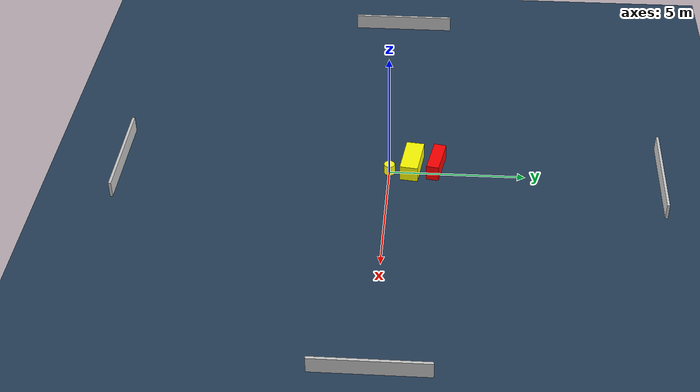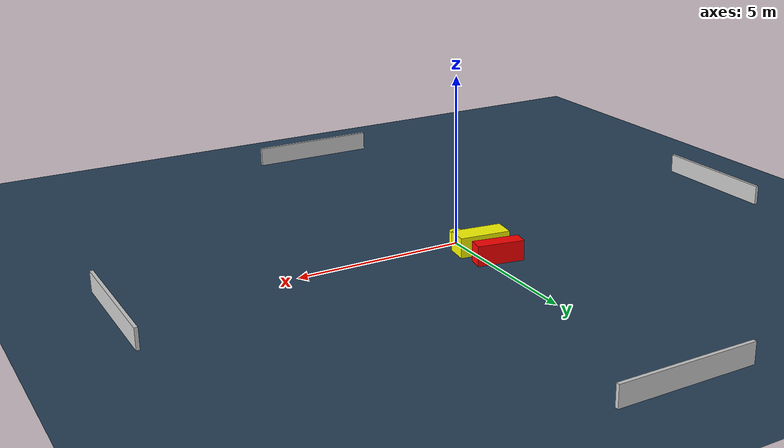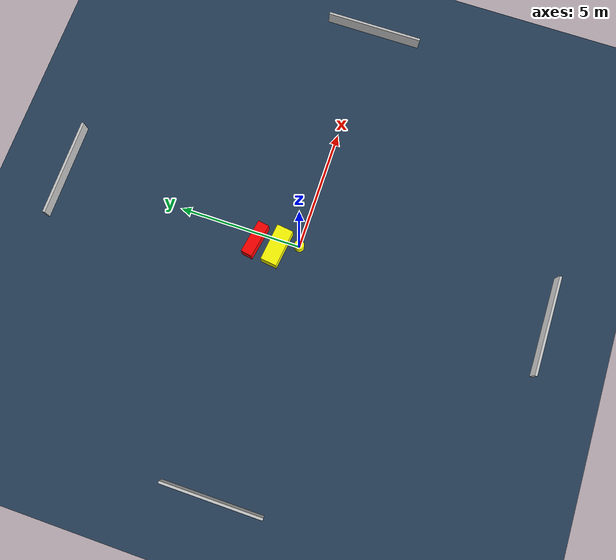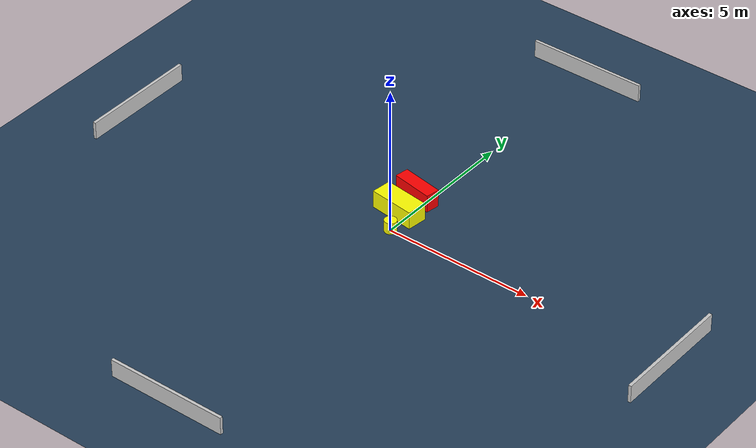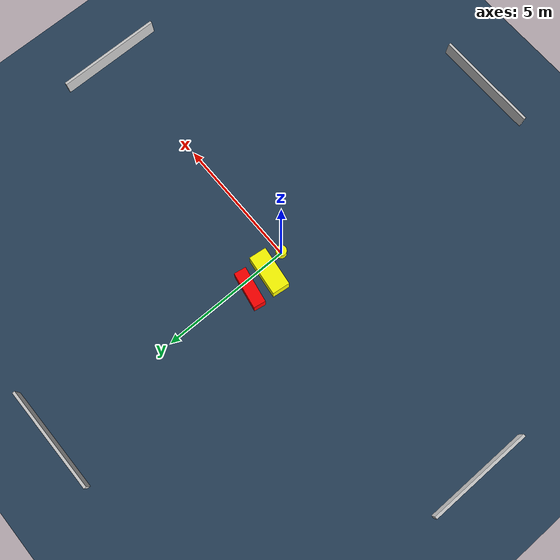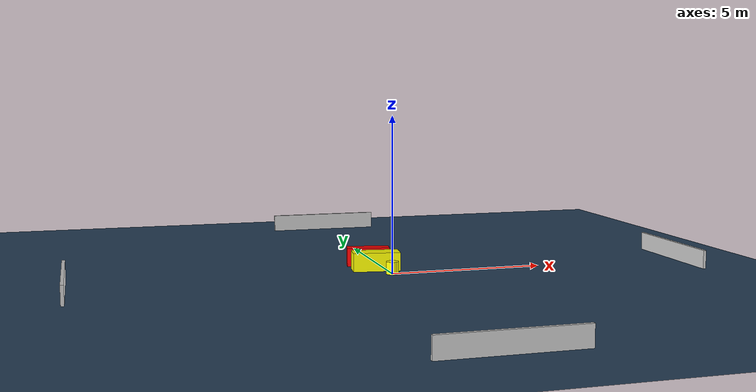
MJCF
<?xml version="1.0" ?>
<mujoco model="generated_environment">
  <option timestep="0.01" integrator="RK4" cone="elliptic"/>
  <default>
    <geom density="1"/>
  </default>
  <asset>
    <texture builtin="gradient" height="3072" name="skybox" rgb1="0.3 0.5 0.7" rgb2="0 0 0" type="skybox" width="512"/>
    <texture builtin="checker" height="300" name="groundplane" rgb1="0.2 0.3 0.4" rgb2="0.1 0.2 0.3" type="2d" width="300"/>
    <material name="groundplane" reflectance="0.2" texrepeat="5 5" texture="groundplane"/>
  </asset>
  <worldbody>
    <light dir="0 0 -1" directional="true" pos="0 0 1.5"/>
    <geom condim="3" friction="0.5 0.005 0.001" material="groundplane" name="floor" pos="0 0 0" size="0 0 0.05" type="plane"/>
    <body name="walls">
      <geom name="wall_1" condim="4" pos="-10.0 0.0 0.3" rgba="0.800000011920929 0.800000011920929 0.800000011920929 1.0" size="0.05 2.0 0.3" type="box"/>
      <geom name="wall_2" condim="4" pos="10.0 0.0 0.3" rgba="0.800000011920929 0.800000011920929 0.800000011920929 1.0" size="0.05 2.0 0.3" type="box"/>
      <geom name="wall_3" condim="4" pos="0.0 -10.0 0.3" rgba="0.800000011920929 0.800000011920929 0.800000011920929 1.0" size="2.0 0.05 0.3" type="box"/>
      <geom name="wall_4" condim="4" pos="0.0 10.0 0.3" rgba="0.800000011920929 0.800000011920929 0.800000011920929 1.0" size="2.0 0.05 0.3" type="box"/>
    </body>
    <body name="robot">
      <joint name="joint_x" type="slide" pos="0 0 0" axis="1 0 0"/>
      <joint name="joint_y" type="slide" pos="0 0 0" axis="0 1 0"/>
      <geom name="robot" type="cylinder" pos="0.0 0.0 0.2" size="0.2 0.2 0.0" mass="5.0" friction="1.0 0.005 0.0001" condim="4" rgba="1.0 1.0 0.0 1.0"/>
    </body>
    <body name="obstacle_1_movable">
      <geom name="obstacle_1_movable" condim="4" pos="-0.32469640106971925 0.8216238447259928 0.3" euler="0 0 352.9052183050354" friction="0.0 0.005 0.001" rgba="1.0 1.0 0.0 1.0" size="0.7603056798962631 0.3332106766642599 0.3" type="box" mass="0.1"/>
      <joint type="free"/>
    </body>
    <body name="obstacle_2_static">
      <geom name="obstacle_2_static" condim="4" pos="-0.343975866748001 1.7202717042014288 0.3" euler="0 0 259.83132365695513" friction="0.0 0.005 0.001" rgba="1.0 0.0 0.0 1.0" size="0.2296296830196032 0.6960386127007248 0.3" type="box"/>
    </body>
  </worldbody>
  <actuator>
    <motor name="actuator_x" joint="joint_x" gear="1" ctrlrange="-1 1"/>
    <motor name="actuator_y" joint="joint_y" gear="1" ctrlrange="-1 1"/>
  </actuator>
</mujoco>
